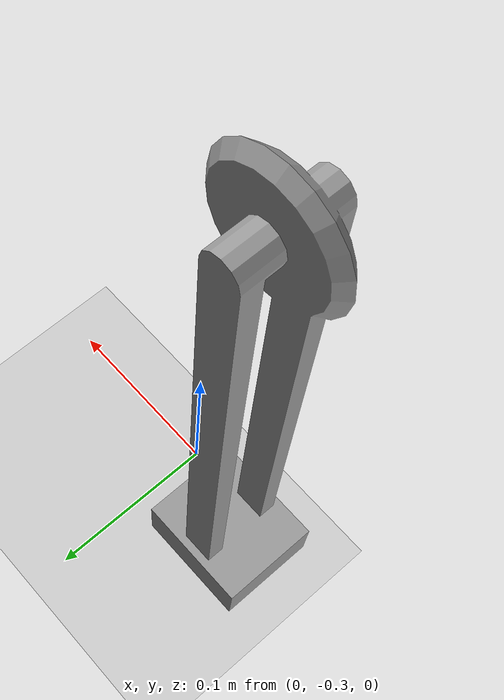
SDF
<sdf version="1.7">
 <world name="default">
  <light name="sun" type="directional">
   <pose>0 0 10 0 -0 0</pose>
   <diffuse>0.8 0.8 0.8 1</diffuse>
   <specular>0.2 0.2 0.2 1</specular>
   <attenuation>
    <range>1000</range>
    <constant>0.9</constant>
    <linear>0.01</linear>
    <quadratic>0.001</quadratic>
   </attenuation>
   <direction>-0.5 0.1 -0.9</direction>
   <spot><inner_angle>0</inner_angle><outer_angle>0</outer_angle><falloff>0</falloff></spot>
  </light>
  <model name="ground_plane">
   <static>1</static>
   <link name="link">
    <collision name="collision">
     <geometry><plane><normal>0 0 1</normal><size>100 100</size></plane></geometry>
     <surface>
      <contact><collide_bitmask>65535</collide_bitmask></contact>
      <friction><ode><mu>100</mu><mu2>50</mu2></ode></friction>
     </surface>
    </collision>
    <visual name="visual">
     <cast_shadows>0</cast_shadows>
     <geometry><plane><normal>0 0 1</normal><size>100 100</size></plane></geometry>
     <material>
      <script><uri>file://media/materials/scripts/gazebo.material</uri><name>Gazebo/Grey</name></script>
     </material>
    </visual>
   </link>
  </model>
  <gravity>0 0 -9.8</gravity>
  <magnetic_field>6e-06 2.3e-05 -4.2e-05</magnetic_field>
  <atmosphere type="adiabatic"/>
  <physics type="ode">
   <max_step_size>0.001</max_step_size>
   <real_time_factor>1</real_time_factor>
   <real_time_update_rate>1000</real_time_update_rate>
  </physics>
  <scene><ambient>0.4 0.4 0.4 1</ambient><background>0.7 0.7 0.7 1</background><shadows>1</shadows></scene>
  <spherical_coordinates>
   <surface_model>EARTH_WGS84</surface_model>
   <latitude_deg>0</latitude_deg>
   <longitude_deg>0</longitude_deg>
   <elevation>0</elevation>
   <heading_deg>0</heading_deg>
  </spherical_coordinates>
  <model name="cutter_sim">
   <link name="link_0">
    <inertial>
     <mass>1</mass>
     <inertia>
      <ixx>0.166667</ixx>
      <ixy>0</ixy>
      <ixz>0</ixz>
      <iyy>0.166667</iyy>
      <iyz>0</iyz>
      <izz>0.166667</izz>
     </inertia>
    </inertial>
    <visual name="visual">
     <pose>0.05 -0.04 0 0 0 0</pose>
     <geometry>
      <mesh><uri>/home/antwoor/moveit_ws/src/moveit_solid_robot/worlds/cutter.stl</uri><scale>1 1 1</scale></mesh>
     </geometry>
     <material>
      <lighting>1</lighting>
      <script><uri>file://media/materials/scripts/gazebo.material</uri><name>Gazebo/Grey</name></script>
      <shader type="pixel"/>
     </material>
    </visual>
   </link>
   <static>1</static>
   <pose>-0.06208 0.047213 0 0 -0 0</pose>
  </model>
 </world>
</sdf>
